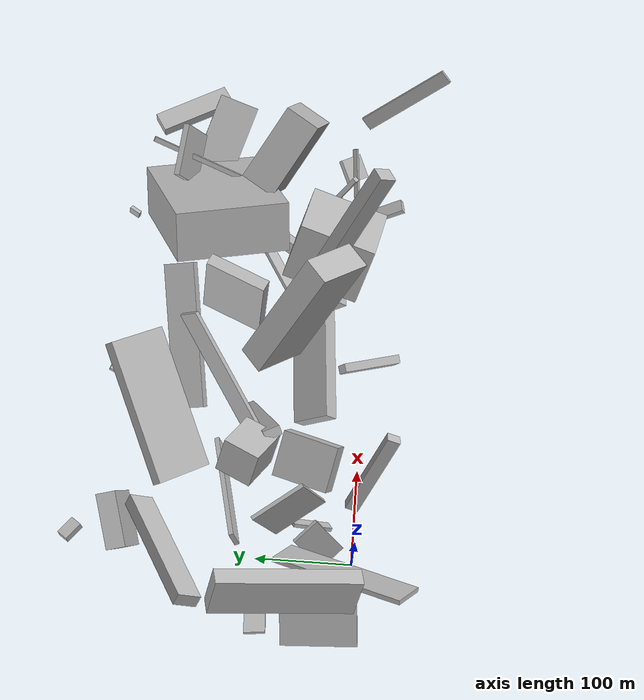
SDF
<sdf version="1.6">
 <world name="default">
  <model name="building_2">
   <static>0</static>
   <pose>341.52604238000004 220.64011878999986 82.82745168562164 1.7891322910735217 -0.7077258805021777 0.09459754326665948</pose>
   <link name="link">
    <gravity>0</gravity>
    <pose>0 0 59.0 0 0 0</pose>
    <collision name="collision"><geometry><box><size>52 150 118</size></box></geometry></collision>
    <visual name="visual">
     <cast_shadows>0</cast_shadows>
     <geometry><box><size>52 150 118</size></box></geometry>
     <material>
      <script>
       <uri>model://HANNAS_wall/materials/scripts</uri>
       <uri>model://HANNAS_wall/materials/textures</uri>
       <name>vrc/HANNAS_wall</name>
      </script>
     </material>
    </visual>
   </link>
  </model>
  <model name="building_5">
   <static>0</static>
   <pose>301.4547423124558 0.5599904273903036 97.15543859328653 1.4255887773112768 -0.6133020785218337 2.949797126352915</pose>
   <link name="link">
    <gravity>0</gravity>
    <pose>0 0 40.0 0 0 0</pose>
    <collision name="collision"><geometry><box><size>72 66 80</size></box></geometry></collision>
    <visual name="visual">
     <cast_shadows>0</cast_shadows>
     <geometry><box><size>72 66 80</size></box></geometry>
     <material>
      <script>
       <uri>model://HANNAS_wall/materials/scripts</uri>
       <uri>model://HANNAS_wall/materials/textures</uri>
       <name>vrc/HANNAS_wall</name>
      </script>
     </material>
    </visual>
   </link>
  </model>
  <model name="building_9">
   <static>0</static>
   <pose>216.8040956596684 202.14573182761615 54.717733265962366 0.764210004585523 1.137876264615246 -0.7127034768890798</pose>
   <link name="link">
    <gravity>0</gravity>
    <pose>0 0 16.0 0 0 0</pose>
    <collision name="collision"><geometry><box><size>13 150 32</size></box></geometry></collision>
    <visual name="visual">
     <cast_shadows>0</cast_shadows>
     <geometry><box><size>13 150 32</size></box></geometry>
     <material>
      <script>
       <uri>model://HANNAS_wall/materials/scripts</uri>
       <uri>model://HANNAS_wall/materials/textures</uri>
       <name>vrc/HANNAS_wall</name>
      </script>
     </material>
    </visual>
   </link>
  </model>
  <model name="building_10">
   <static>0</static>
   <pose>81.19572400754267 24.07061911159434 71.51860275125543 2.039609384131319 -1.081611709330071 2.39444352031199</pose>
   <link name="link">
    <gravity>0</gravity>
    <pose>0 0 30.0 0 0 0</pose>
    <collision name="collision"><geometry><box><size>20 48 60</size></box></geometry></collision>
    <visual name="visual">
     <cast_shadows>0</cast_shadows>
     <geometry><box><size>20 48 60</size></box></geometry>
     <material>
      <script>
       <uri>model://HANNAS_wall/materials/scripts</uri>
       <uri>model://HANNAS_wall/materials/textures</uri>
       <name>vrc/HANNAS_wall</name>
      </script>
     </material>
    </visual>
   </link>
  </model>
  <model name="building_11">
   <static>0</static>
   <pose>2.8668487016372057 284.1288306065095 48.47826532700405 -3.076249332453137 -1.2430304182157088 0.8263246813628188</pose>
   <link name="link">
    <gravity>0</gravity>
    <pose>0 0 6.5 0 0 0</pose>
    <collision name="collision"><geometry><box><size>8 21 13</size></box></geometry></collision>
    <visual name="visual">
     <cast_shadows>0</cast_shadows>
     <geometry><box><size>8 21 13</size></box></geometry>
     <material>
      <script>
       <uri>model://HANNAS_wall/materials/scripts</uri>
       <uri>model://HANNAS_wall/materials/textures</uri>
       <name>vrc/HANNAS_wall</name>
      </script>
     </material>
    </visual>
   </link>
  </model>
  <model name="building_13">
   <static>0</static>
   <pose>82.90284046993725 -15.041018577061138 49.252827758021354 -2.5864025751455917 -0.9083792493678826 -0.618874088382435</pose>
   <link name="link">
    <gravity>0</gravity>
    <pose>0 0 5.5 0 0 0</pose>
    <collision name="collision"><geometry><box><size>105 14 11</size></box></geometry></collision>
    <visual name="visual">
     <cast_shadows>0</cast_shadows>
     <geometry><box><size>105 14 11</size></box></geometry>
     <material>
      <script>
       <uri>model://HANNAS_wall/materials/scripts</uri>
       <uri>model://HANNAS_wall/materials/textures</uri>
       <name>vrc/HANNAS_wall</name>
      </script>
     </material>
    </visual>
   </link>
  </model>
  <model name="building_20">
   <static>0</static>
   <pose>34.39418865203794 219.81449964673436 75.69713492005818 0.9307370608895272 0.580188603628873 -1.4808460556475103</pose>
   <link name="link">
    <gravity>0</gravity>
    <pose>0 0 75.0 0 0 0</pose>
    <collision name="collision"><geometry><box><size>26 13 150</size></box></geometry></collision>
    <visual name="visual">
     <cast_shadows>0</cast_shadows>
     <geometry><box><size>26 13 150</size></box></geometry>
     <material>
      <script>
       <uri>model://HANNAS_wall/materials/scripts</uri>
       <uri>model://HANNAS_wall/materials/textures</uri>
       <name>vrc/HANNAS_wall</name>
      </script>
     </material>
    </visual>
   </link>
  </model>
  <model name="building_21">
   <static>0</static>
   <pose>434.301880513553 192.0526567742483 91.52971496213053 1.803733155464633 -0.266200647469072 -1.7651274589724242</pose>
   <link name="link">
    <gravity>0</gravity>
    <pose>0 0 27.0 0 0 0</pose>
    <collision name="collision"><geometry><box><size>6 57 54</size></box></geometry></collision>
    <visual name="visual">
     <cast_shadows>0</cast_shadows>
     <geometry><box><size>6 57 54</size></box></geometry>
     <material>
      <script>
       <uri>model://HANNAS_wall/materials/scripts</uri>
       <uri>model://HANNAS_wall/materials/textures</uri>
       <name>vrc/HANNAS_wall</name>
      </script>
     </material>
    </visual>
   </link>
  </model>
  <model name="building_22">
   <static>0</static>
   <pose>-69.27756552905112 -8.811382177327594 30.713801893319314 1.7630988830721053 -0.9840163609588662 3.005907695766942</pose>
   <link name="link">
    <gravity>0</gravity>
    <pose>0 0 39.5 0 0 0</pose>
    <collision name="collision"><geometry><box><size>4 45 79</size></box></geometry></collision>
    <visual name="visual">
     <cast_shadows>0</cast_shadows>
     <geometry><box><size>4 45 79</size></box></geometry>
     <material>
      <script>
       <uri>model://HANNAS_wall/materials/scripts</uri>
       <uri>model://HANNAS_wall/materials/textures</uri>
       <name>vrc/HANNAS_wall</name>
      </script>
     </material>
    </visual>
   </link>
  </model>
  <model name="building_25">
   <static>0</static>
   <pose>72.79376511452827 116.56428400813195 97.79221320325462 0.10201595071322006 -0.666639019859626 2.616938225732702</pose>
   <link name="link">
    <gravity>0</gravity>
    <pose>0 0 18.5 0 0 0</pose>
    <collision name="collision"><geometry><box><size>51 39 37</size></box></geometry></collision>
    <visual name="visual">
     <cast_shadows>0</cast_shadows>
     <geometry><box><size>51 39 37</size></box></geometry>
     <material>
      <script>
       <uri>model://HANNAS_wall/materials/scripts</uri>
       <uri>model://HANNAS_wall/materials/textures</uri>
       <name>vrc/HANNAS_wall</name>
      </script>
     </material>
    </visual>
   </link>
  </model>
  <model name="building_28">
   <static>0</static>
   <pose>434.31237671470166 89.88193154834465 63.72481752913932 0.1300706589528736 -0.4827832511488245 -0.5975927855451291</pose>
   <link name="link">
    <gravity>0</gravity>
    <pose>0 0 38.5 0 0 0</pose>
    <collision name="collision"><geometry><box><size>85 38 77</size></box></geometry></collision>
    <visual name="visual">
     <cast_shadows>0</cast_shadows>
     <geometry><box><size>85 38 77</size></box></geometry>
     <material>
      <script>
       <uri>model://HANNAS_wall/materials/scripts</uri>
       <uri>model://HANNAS_wall/materials/textures</uri>
       <name>vrc/HANNAS_wall</name>
      </script>
     </material>
    </visual>
   </link>
  </model>
  <model name="building_29">
   <static>0</static>
   <pose>131.7971752094429 211.30121505288352 85.72398921182048 0.8185375374178255 -0.2891239865676633 0.4137247584944398</pose>
   <link name="link">
    <gravity>0</gravity>
    <pose>0 0 4.5 0 0 0</pose>
    <collision name="collision"><geometry><box><size>150 84 9</size></box></geometry></collision>
    <visual name="visual">
     <cast_shadows>0</cast_shadows>
     <geometry><box><size>150 84 9</size></box></geometry>
     <material>
      <script>
       <uri>model://HANNAS_wall/materials/scripts</uri>
       <uri>model://HANNAS_wall/materials/textures</uri>
       <name>vrc/HANNAS_wall</name>
      </script>
     </material>
    </visual>
   </link>
  </model>
  <model name="building_30">
   <static>0</static>
   <pose>213.09313205846723 -4.259851772603362 29.3306659482992 2.3748561079313695 -1.259428399099251 -2.090412569742533</pose>
   <link name="link">
    <gravity>0</gravity>
    <pose>0 0 4.5 0 0 0</pose>
    <collision name="collision"><geometry><box><size>23 60 9</size></box></geometry></collision>
    <visual name="visual">
     <cast_shadows>0</cast_shadows>
     <geometry><box><size>23 60 9</size></box></geometry>
     <material>
      <script>
       <uri>model://HANNAS_wall/materials/scripts</uri>
       <uri>model://HANNAS_wall/materials/textures</uri>
       <name>vrc/HANNAS_wall</name>
      </script>
     </material>
    </visual>
   </link>
  </model>
  <model name="building_31">
   <static>0</static>
   <pose>434.81038925621965 14.111421392512753 16.490153383136303 -1.2567929884598672 -0.3354452979706511 0.446843062547365</pose>
   <link name="link">
    <gravity>0</gravity>
    <pose>0 0 11.5 0 0 0</pose>
    <collision name="collision"><geometry><box><size>26 7 23</size></box></geometry></collision>
    <visual name="visual">
     <cast_shadows>0</cast_shadows>
     <geometry><box><size>26 7 23</size></box></geometry>
     <material>
      <script>
       <uri>model://HANNAS_wall/materials/scripts</uri>
       <uri>model://HANNAS_wall/materials/textures</uri>
       <name>vrc/HANNAS_wall</name>
      </script>
     </material>
    </visual>
   </link>
  </model>
  <model name="building_32">
   <static>0</static>
   <pose>192.05924103240312 96.39989604446517 104.14645461580756 0.5814742074436827 0.0349030699600537 0.6985406459860662</pose>
   <link name="link">
    <gravity>0</gravity>
    <pose>0 0 75.0 0 0 0</pose>
    <collision name="collision"><geometry><box><size>29 62 150</size></box></geometry></collision>
    <visual name="visual">
     <cast_shadows>0</cast_shadows>
     <geometry><box><size>29 62 150</size></box></geometry>
     <material>
      <script>
       <uri>model://HANNAS_wall/materials/scripts</uri>
       <uri>model://HANNAS_wall/materials/textures</uri>
       <name>vrc/HANNAS_wall</name>
      </script>
     </material>
    </visual>
   </link>
  </model>
  <model name="building_37">
   <static>0</static>
   <pose>145.46013355124555 47.27100197412727 24.277988708146964 1.5556035773906451 -0.9115701658487919 1.6581735400198838</pose>
   <link name="link">
    <gravity>0</gravity>
    <pose>0 0 75.0 0 0 0</pose>
    <collision name="collision"><geometry><box><size>17 42 150</size></box></geometry></collision>
    <visual name="visual">
     <cast_shadows>0</cast_shadows>
     <geometry><box><size>17 42 150</size></box></geometry>
     <material>
      <script>
       <uri>model://HANNAS_wall/materials/scripts</uri>
       <uri>model://HANNAS_wall/materials/textures</uri>
       <name>vrc/HANNAS_wall</name>
      </script>
     </material>
    </visual>
   </link>
  </model>
  <model name="building_38">
   <static>0</static>
   <pose>176.37708715861538 250.57219549755894 38.06921129345056 1.786632266255326 -0.3266750226733066 1.1994267980231996</pose>
   <link name="link">
    <gravity>0</gravity>
    <pose>0 0 12.0 0 0 0</pose>
    <collision name="collision"><geometry><box><size>29 4 24</size></box></geometry></collision>
    <visual name="visual">
     <cast_shadows>0</cast_shadows>
     <geometry><box><size>29 4 24</size></box></geometry>
     <material>
      <script>
       <uri>model://HANNAS_wall/materials/scripts</uri>
       <uri>model://HANNAS_wall/materials/textures</uri>
       <name>vrc/HANNAS_wall</name>
      </script>
     </material>
    </visual>
   </link>
  </model>
  <model name="building_41">
   <static>0</static>
   <pose>59.77366092373103 135.2565317522319 38.35527206335647 1.0036524318110016 -1.0777206302015079 0.8295058965519776</pose>
   <link name="link">
    <gravity>0</gravity>
    <pose>0 0 2.5 0 0 0</pose>
    <collision name="collision"><geometry><box><size>19 127 5</size></box></geometry></collision>
    <visual name="visual">
     <cast_shadows>0</cast_shadows>
     <geometry><box><size>19 127 5</size></box></geometry>
     <material>
      <script>
       <uri>model://HANNAS_wall/materials/scripts</uri>
       <uri>model://HANNAS_wall/materials/textures</uri>
       <name>vrc/HANNAS_wall</name>
      </script>
     </material>
    </visual>
   </link>
  </model>
  <model name="building_42">
   <static>0</static>
   <pose>371.2993025620165 258.4140467741305 10.816298300922048 -1.4441555776561843 1.2706314749403607 2.69308010476754</pose>
   <link name="link">
    <gravity>0</gravity>
    <pose>0 0 6.0 0 0 0</pose>
    <collision name="collision"><geometry><box><size>8 4 12</size></box></geometry></collision>
    <visual name="visual">
     <cast_shadows>0</cast_shadows>
     <geometry><box><size>8 4 12</size></box></geometry>
     <material>
      <script>
       <uri>model://HANNAS_wall/materials/scripts</uri>
       <uri>model://HANNAS_wall/materials/textures</uri>
       <name>vrc/HANNAS_wall</name>
      </script>
     </material>
    </visual>
   </link>
  </model>
  <model name="building_46">
   <static>0</static>
   <pose>134.91592162860667 96.003542031685 62.476456518694214 1.5615220939602246 -1.059279542014164 -2.663205720387876</pose>
   <link name="link">
    <gravity>0</gravity>
    <pose>0 0 9.0 0 0 0</pose>
    <collision name="collision"><geometry><box><size>133 10 18</size></box></geometry></collision>
    <visual name="visual">
     <cast_shadows>0</cast_shadows>
     <geometry><box><size>133 10 18</size></box></geometry>
     <material>
      <script>
       <uri>model://HANNAS_wall/materials/scripts</uri>
       <uri>model://HANNAS_wall/materials/textures</uri>
       <name>vrc/HANNAS_wall</name>
      </script>
     </material>
    </visual>
   </link>
  </model>
  <model name="building_47">
   <static>0</static>
   <pose>315.2985484124247 88.11481422311884 75.28351608690903 0.2638066422292936 -0.6579486358586328 1.222454042437698</pose>
   <link name="link">
    <gravity>0</gravity>
    <pose>0 0 8.5 0 0 0</pose>
    <collision name="collision"><geometry><box><size>150 9 17</size></box></geometry></collision>
    <visual name="visual">
     <cast_shadows>0</cast_shadows>
     <geometry><box><size>150 9 17</size></box></geometry>
     <material>
      <script>
       <uri>model://HANNAS_wall/materials/scripts</uri>
       <uri>model://HANNAS_wall/materials/textures</uri>
       <name>vrc/HANNAS_wall</name>
      </script>
     </material>
    </visual>
   </link>
  </model>
  <model name="building_48">
   <static>0</static>
   <pose>-5.361779292207148 72.22939824735434 56.41351494683312 -1.0093764749349026 -0.7095771125542832 2.3877082287965643</pose>
   <link name="link">
    <gravity>0</gravity>
    <pose>0 0 75.0 0 0 0</pose>
    <collision name="collision"><geometry><box><size>36 5 150</size></box></geometry></collision>
    <visual name="visual">
     <cast_shadows>0</cast_shadows>
     <geometry><box><size>36 5 150</size></box></geometry>
     <material>
      <script>
       <uri>model://HANNAS_wall/materials/scripts</uri>
       <uri>model://HANNAS_wall/materials/textures</uri>
       <name>vrc/HANNAS_wall</name>
      </script>
     </material>
    </visual>
   </link>
  </model>
  <model name="building_49">
   <static>0</static>
   <pose>23.138705936391972 25.132763260720864 34.22445658736946 1.823527983406162 -0.5538974622061917 -2.48976456191755</pose>
   <link name="link">
    <gravity>0</gravity>
    <pose>0 0 15.5 0 0 0</pose>
    <collision name="collision"><geometry><box><size>4 57 31</size></box></geometry></collision>
    <visual name="visual">
     <cast_shadows>0</cast_shadows>
     <geometry><box><size>4 57 31</size></box></geometry>
     <material>
      <script>
       <uri>model://HANNAS_wall/materials/scripts</uri>
       <uri>model://HANNAS_wall/materials/textures</uri>
       <name>vrc/HANNAS_wall</name>
      </script>
     </material>
    </visual>
   </link>
  </model>
  <model name="building_50">
   <static>0</static>
   <pose>357.42013587642924 56.21646499954439 72.20150893999379 1.8388910866726174 -1.0577304250117878 -1.0953942890144404</pose>
   <link name="link">
    <gravity>0</gravity>
    <pose>0 0 2.5 0 0 0</pose>
    <collision name="collision"><geometry><box><size>150 5 5</size></box></geometry></collision>
    <visual name="visual">
     <cast_shadows>0</cast_shadows>
     <geometry><box><size>150 5 5</size></box></geometry>
     <material>
      <script>
       <uri>model://HANNAS_wall/materials/scripts</uri>
       <uri>model://HANNAS_wall/materials/textures</uri>
       <name>vrc/HANNAS_wall</name>
      </script>
     </material>
    </visual>
   </link>
  </model>
  <model name="building_51">
   <static>0</static>
   <pose>15.037568038635978 250.28552908793446 57.16839775181472 1.381965727292619 -0.22893951713935665 0.26514417765530907</pose>
   <link name="link">
    <gravity>0</gravity>
    <pose>0 0 10.0 0 0 0</pose>
    <collision name="collision"><geometry><box><size>57 75 20</size></box></geometry></collision>
    <visual name="visual">
     <cast_shadows>0</cast_shadows>
     <geometry><box><size>57 75 20</size></box></geometry>
     <material>
      <script>
       <uri>model://HANNAS_wall/materials/scripts</uri>
       <uri>model://HANNAS_wall/materials/textures</uri>
       <name>vrc/HANNAS_wall</name>
      </script>
     </material>
    </visual>
   </link>
  </model>
  <model name="building_52">
   <static>0</static>
   <pose>449.929814753699 160.71442269512707 44.91738450041865 2.784092336156967 -0.19414246987049194 1.3096823912103768</pose>
   <link name="link">
    <gravity>0</gravity>
    <pose>0 0 2.0 0 0 0</pose>
    <collision name="collision"><geometry><box><size>42 74 4</size></box></geometry></collision>
    <visual name="visual">
     <cast_shadows>0</cast_shadows>
     <geometry><box><size>42 74 4</size></box></geometry>
     <material>
      <script>
       <uri>model://HANNAS_wall/materials/scripts</uri>
       <uri>model://HANNAS_wall/materials/textures</uri>
       <name>vrc/HANNAS_wall</name>
      </script>
     </material>
    </visual>
   </link>
  </model>
  <model name="building_55">
   <static>0</static>
   <pose>244.8572678411478 138.90318480639326 62.46026164593702 0.03196712032091695 -0.18563019902447941 2.720131928314006</pose>
   <link name="link">
    <gravity>0</gravity>
    <pose>0 0 43.0 0 0 0</pose>
    <collision name="collision"><geometry><box><size>13 65 86</size></box></geometry></collision>
    <visual name="visual">
     <cast_shadows>0</cast_shadows>
     <geometry><box><size>13 65 86</size></box></geometry>
     <material>
      <script>
       <uri>model://HANNAS_wall/materials/scripts</uri>
       <uri>model://HANNAS_wall/materials/textures</uri>
       <name>vrc/HANNAS_wall</name>
      </script>
     </material>
    </visual>
   </link>
  </model>
  <model name="building_56">
   <static>0</static>
   <pose>471.4043457666236 13.147374484027456 47.438838093483106 -0.8473146002462323 0.54968349081727 -2.301991017732072</pose>
   <link name="link">
    <gravity>0</gravity>
    <pose>0 0 52.5 0 0 0</pose>
    <collision name="collision"><geometry><box><size>15 4 105</size></box></geometry></collision>
    <visual name="visual">
     <cast_shadows>0</cast_shadows>
     <geometry><box><size>15 4 105</size></box></geometry>
     <material>
      <script>
       <uri>model://HANNAS_wall/materials/scripts</uri>
       <uri>model://HANNAS_wall/materials/textures</uri>
       <name>vrc/HANNAS_wall</name>
      </script>
     </material>
    </visual>
   </link>
  </model>
  <model name="building_58">
   <static>0</static>
   <pose>306.8888767872541 100.2424344969588 32.18462830604959 2.9232239857510516 1.074919281689708 1.939091949067442</pose>
   <link name="link">
    <gravity>0</gravity>
    <pose>0 0 6.0 0 0 0</pose>
    <collision name="collision"><geometry><box><size>4 150 12</size></box></geometry></collision>
    <visual name="visual">
     <cast_shadows>0</cast_shadows>
     <geometry><box><size>4 150 12</size></box></geometry>
     <material>
      <script>
       <uri>model://HANNAS_wall/materials/scripts</uri>
       <uri>model://HANNAS_wall/materials/textures</uri>
       <name>vrc/HANNAS_wall</name>
      </script>
     </material>
    </visual>
   </link>
  </model>
  <model name="building_63">
   <static>0</static>
   <pose>214.62147206430663 179.26041760116695 9.011369177407815 0.8130836576443748 0.540291037139957 0.806799019653159</pose>
   <link name="link">
    <gravity>0</gravity>
    <pose>0 0 4.5 0 0 0</pose>
    <collision name="collision"><geometry><box><size>19 4 9</size></box></geometry></collision>
    <visual name="visual">
     <cast_shadows>0</cast_shadows>
     <geometry><box><size>19 4 9</size></box></geometry>
     <material>
      <script>
       <uri>model://HANNAS_wall/materials/scripts</uri>
       <uri>model://HANNAS_wall/materials/textures</uri>
       <name>vrc/HANNAS_wall</name>
      </script>
     </material>
    </visual>
   </link>
  </model>
  <model name="building_66">
   <static>0</static>
   <pose>-83.40838782216474 94.76028838122065 28.25427293544016 1.8546148434761445 0.12243932657072772 1.646563497509353</pose>
   <link name="link">
    <gravity>0</gravity>
    <pose>0 0 15.5 0 0 0</pose>
    <collision name="collision"><geometry><box><size>22 4 31</size></box></geometry></collision>
    <visual name="visual">
     <cast_shadows>0</cast_shadows>
     <geometry><box><size>22 4 31</size></box></geometry>
     <material>
      <script>
       <uri>model://HANNAS_wall/materials/scripts</uri>
       <uri>model://HANNAS_wall/materials/textures</uri>
       <name>vrc/HANNAS_wall</name>
      </script>
     </material>
    </visual>
   </link>
  </model>
  <model name="building_68">
   <static>0</static>
   <pose>263.09509199489696 56.21140455430423 128.9237766604449 0.3879812151273669 -0.6071372778659421 1.8386210364312787</pose>
   <link name="link">
    <gravity>0</gravity>
    <pose>0 0 75.0 0 0 0</pose>
    <collision name="collision"><geometry><box><size>19 16 150</size></box></geometry></collision>
    <visual name="visual">
     <cast_shadows>0</cast_shadows>
     <geometry><box><size>19 16 150</size></box></geometry>
     <material>
      <script>
       <uri>model://HANNAS_wall/materials/scripts</uri>
       <uri>model://HANNAS_wall/materials/textures</uri>
       <name>vrc/HANNAS_wall</name>
      </script>
     </material>
    </visual>
   </link>
  </model>
  <model name="building_69">
   <static>0</static>
   <pose>-67.09985445872691 70.86749025684587 89.69110589259748 0.40655939598832225 -0.22656918805238926 1.6858953504733445</pose>
   <link name="link">
    <gravity>0</gravity>
    <pose>0 0 25.0 0 0 0</pose>
    <collision name="collision"><geometry><box><size>150 18 50</size></box></geometry></collision>
    <visual name="visual">
     <cast_shadows>0</cast_shadows>
     <geometry><box><size>150 18 50</size></box></geometry>
     <material>
      <script>
       <uri>model://HANNAS_wall/materials/scripts</uri>
       <uri>model://HANNAS_wall/materials/textures</uri>
       <name>vrc/HANNAS_wall</name>
      </script>
     </material>
    </visual>
   </link>
  </model>
  <model name="building_70">
   <static>0</static>
   <pose>248.9305413549592 75.93346555429945 38.754904765703344 0.3454780357087642 -0.8662541242910716 0.11064186309946798</pose>
   <link name="link">
    <gravity>0</gravity>
    <pose>0 0 3.5 0 0 0</pose>
    <collision name="collision"><geometry><box><size>9 20 7</size></box></geometry></collision>
    <visual name="visual">
     <cast_shadows>0</cast_shadows>
     <geometry><box><size>9 20 7</size></box></geometry>
     <material>
      <script>
       <uri>model://HANNAS_wall/materials/scripts</uri>
       <uri>model://HANNAS_wall/materials/textures</uri>
       <name>vrc/HANNAS_wall</name>
      </script>
     </material>
    </visual>
   </link>
  </model>
  <model name="building_71">
   <static>0</static>
   <pose>113.10279719340762 89.9961796233613 10.008890490019292 0.8357378971006302 1.2720504500578722 2.0945613244318957</pose>
   <link name="link">
    <gravity>0</gravity>
    <pose>0 0 18.5 0 0 0</pose>
    <collision name="collision"><geometry><box><size>5 16 37</size></box></geometry></collision>
    <visual name="visual">
     <cast_shadows>0</cast_shadows>
     <geometry><box><size>5 16 37</size></box></geometry>
     <material>
      <script>
       <uri>model://HANNAS_wall/materials/scripts</uri>
       <uri>model://HANNAS_wall/materials/textures</uri>
       <name>vrc/HANNAS_wall</name>
      </script>
     </material>
    </visual>
   </link>
  </model>
  <model name="building_74">
   <static>0</static>
   <pose>24.81968189575859 66.76511886578848 113.2466283611 1.733004836742782 -1.3162395841951142 2.0104481245875205</pose>
   <link name="link">
    <gravity>0</gravity>
    <pose>0 0 2.0 0 0 0</pose>
    <collision name="collision"><geometry><box><size>101 60 4</size></box></geometry></collision>
    <visual name="visual">
     <cast_shadows>0</cast_shadows>
     <geometry><box><size>101 60 4</size></box></geometry>
     <material>
      <script>
       <uri>model://HANNAS_wall/materials/scripts</uri>
       <uri>model://HANNAS_wall/materials/textures</uri>
       <name>vrc/HANNAS_wall</name>
      </script>
     </material>
    </visual>
   </link>
  </model>
  <model name="building_76">
   <static>0</static>
   <pose>271.3497770717101 49.72460245655626 44.42872103062304 -1.4448815589630681 -0.8688877621827846 1.5896304617621877</pose>
   <link name="link">
    <gravity>0</gravity>
    <pose>0 0 4.5 0 0 0</pose>
    <collision name="collision"><geometry><box><size>31 43 9</size></box></geometry></collision>
    <visual name="visual">
     <cast_shadows>0</cast_shadows>
     <geometry><box><size>31 43 9</size></box></geometry>
     <material>
      <script>
       <uri>model://HANNAS_wall/materials/scripts</uri>
       <uri>model://HANNAS_wall/materials/textures</uri>
       <name>vrc/HANNAS_wall</name>
      </script>
     </material>
    </visual>
   </link>
  </model>
  <model name="building_77">
   <static>0</static>
   <pose>412.23791982978145 150.33670670346675 14.195288764901047 0.11362236113899278 -1.2063843453059053 -2.516670663249546</pose>
   <link name="link">
    <gravity>0</gravity>
    <pose>0 0 6.0 0 0 0</pose>
    <collision name="collision"><geometry><box><size>20 36 12</size></box></geometry></collision>
    <visual name="visual">
     <cast_shadows>0</cast_shadows>
     <geometry><box><size>20 36 12</size></box></geometry>
     <material>
      <script>
       <uri>model://HANNAS_wall/materials/scripts</uri>
       <uri>model://HANNAS_wall/materials/textures</uri>
       <name>vrc/HANNAS_wall</name>
      </script>
     </material>
    </visual>
   </link>
  </model>
  <model name="building_79">
   <static>0</static>
   <pose>36.33489244148579 46.53424539522406 26.262812876885164 -0.735461244273031 -0.45629514673056737 1.635991002914051</pose>
   <link name="link">
    <gravity>0</gravity>
    <pose>0 0 6.0 0 0 0</pose>
    <collision name="collision"><geometry><box><size>43 4 12</size></box></geometry></collision>
    <visual name="visual">
     <cast_shadows>0</cast_shadows>
     <geometry><box><size>43 4 12</size></box></geometry>
     <material>
      <script>
       <uri>model://HANNAS_wall/materials/scripts</uri>
       <uri>model://HANNAS_wall/materials/textures</uri>
       <name>vrc/HANNAS_wall</name>
      </script>
     </material>
    </visual>
   </link>
  </model>
  <model name="building_82">
   <static>0</static>
   <pose>375.18776495165866 -1.6241202952546985 31.859505262321505 2.697284730275964 0.17722355153768488 0.17454462164780948</pose>
   <link name="link">
    <gravity>0</gravity>
    <pose>0 0 3.5 0 0 0</pose>
    <collision name="collision"><geometry><box><size>13 62 7</size></box></geometry></collision>
    <visual name="visual">
     <cast_shadows>0</cast_shadows>
     <geometry><box><size>13 62 7</size></box></geometry>
     <material>
      <script>
       <uri>model://HANNAS_wall/materials/scripts</uri>
       <uri>model://HANNAS_wall/materials/textures</uri>
       <name>vrc/HANNAS_wall</name>
      </script>
     </material>
    </visual>
   </link>
  </model>
  <model name="building_83">
   <static>0</static>
   <pose>385.289912519171 114.36731977867413 59.35718369451139 1.2023107676252687 0.5426008462062839 2.6765457024503108</pose>
   <link name="link">
    <gravity>0</gravity>
    <pose>0 0 65.0 0 0 0</pose>
    <collision name="collision"><geometry><box><size>5 4 130</size></box></geometry></collision>
    <visual name="visual">
     <cast_shadows>0</cast_shadows>
     <geometry><box><size>5 4 130</size></box></geometry>
     <material>
      <script>
       <uri>model://HANNAS_wall/materials/scripts</uri>
       <uri>model://HANNAS_wall/materials/textures</uri>
       <name>vrc/HANNAS_wall</name>
      </script>
     </material>
    </visual>
   </link>
  </model>
  <model name="building_85">
   <static>0</static>
   <pose>458.35005814896755 232.1279369011324 38.87677469072474 -1.6278999752728636 -0.25619283296222 -2.623966795613764</pose>
   <link name="link">
    <gravity>0</gravity>
    <pose>0 0 40.0 0 0 0</pose>
    <collision name="collision"><geometry><box><size>23 10 80</size></box></geometry></collision>
    <visual name="visual">
     <cast_shadows>0</cast_shadows>
     <geometry><box><size>23 10 80</size></box></geometry>
     <material>
      <script>
       <uri>model://HANNAS_wall/materials/scripts</uri>
       <uri>model://HANNAS_wall/materials/textures</uri>
       <name>vrc/HANNAS_wall</name>
      </script>
     </material>
    </visual>
   </link>
  </model>
  <model name="building_87">
   <static>0</static>
   <pose>403.19053004402576 19.222189934735578 58.60424703950533 0.5434562219293719 -0.3579082492015459 -1.6706882723664949</pose>
   <link name="link">
    <gravity>0</gravity>
    <pose>0 0 3.0 0 0 0</pose>
    <collision name="collision"><geometry><box><size>4 64 6</size></box></geometry></collision>
    <visual name="visual">
     <cast_shadows>0</cast_shadows>
     <geometry><box><size>4 64 6</size></box></geometry>
     <material>
      <script>
       <uri>model://HANNAS_wall/materials/scripts</uri>
       <uri>model://HANNAS_wall/materials/textures</uri>
       <name>vrc/HANNAS_wall</name>
      </script>
     </material>
    </visual>
   </link>
  </model>
  <model name="building_88">
   <static>0</static>
   <pose>108.9173306846561 104.14503202175284 71.69393338626314 -1.0123145749289337 0.33217307286165265 -0.7382198102199126</pose>
   <link name="link">
    <gravity>0</gravity>
    <pose>0 0 75.0 0 0 0</pose>
    <collision name="collision"><geometry><box><size>4 28 150</size></box></geometry></collision>
    <visual name="visual">
     <cast_shadows>0</cast_shadows>
     <geometry><box><size>4 28 150</size></box></geometry>
     <material>
      <script>
       <uri>model://HANNAS_wall/materials/scripts</uri>
       <uri>model://HANNAS_wall/materials/textures</uri>
       <name>vrc/HANNAS_wall</name>
      </script>
     </material>
    </visual>
   </link>
  </model>
 </world>
</sdf>
